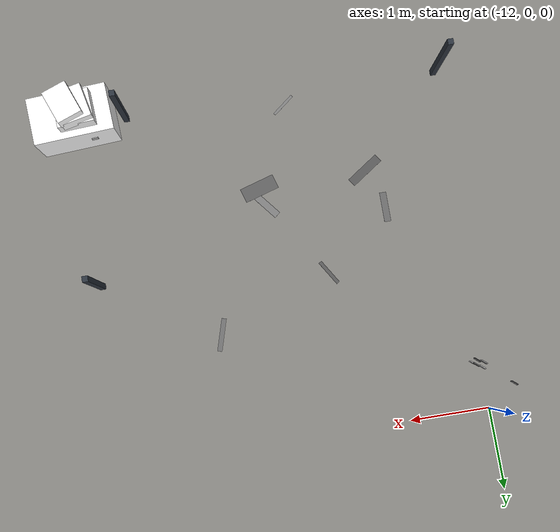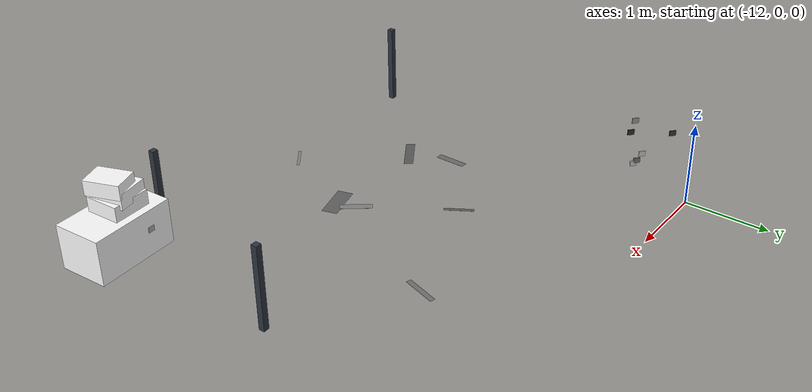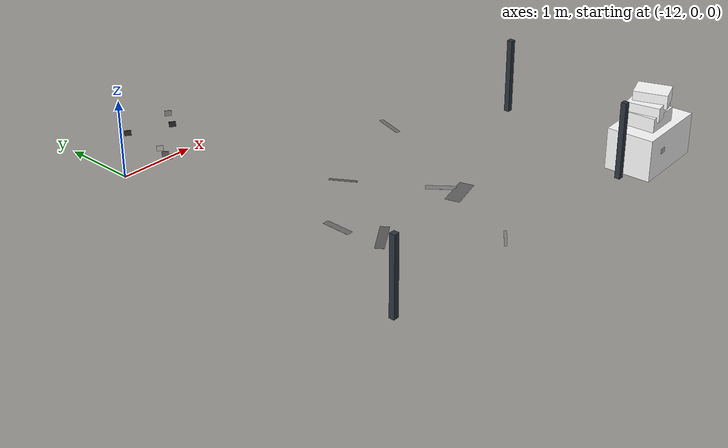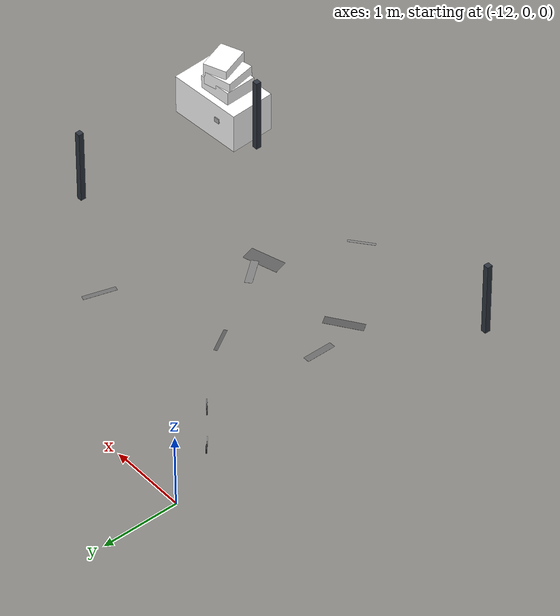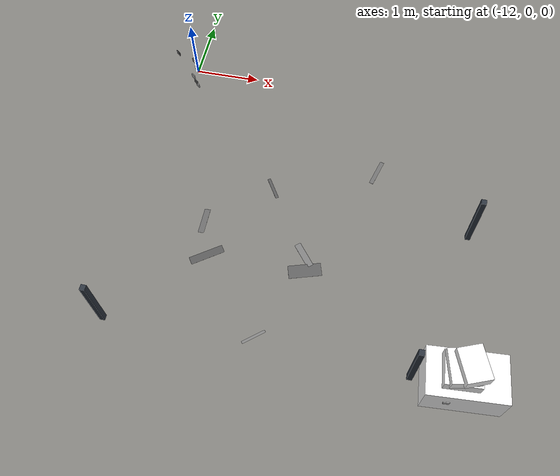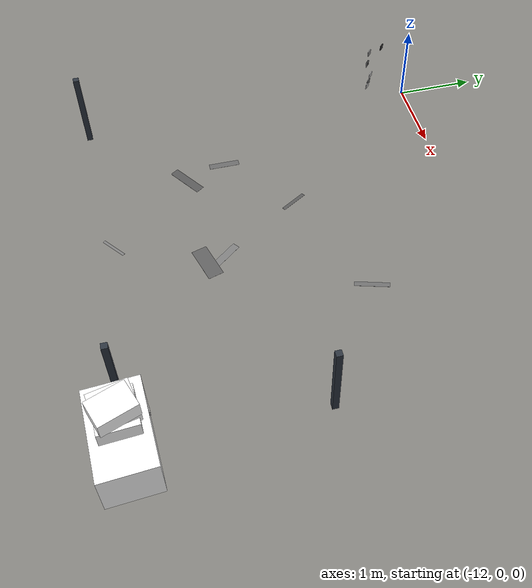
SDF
<sdf version="1.9">
 <world name="warehouse_irregular">
  <model name="concrete_patch_11">
   <static>true</static>
   <pose>-10.305460478600711 -2.00810798786973 0.0006 0 0 -1.0152370035446545</pose>
   <link name="body">
    <visual name="surface">
     <geometry><box><size>0.35070232564056275 0.04545488203444496 0.001</size></box></geometry>
     <material>
      <ambient>0.35538187843651625 0.35538187843651625 0.35538187843651625 1</ambient>
      <diffuse>0.35538187843651625 0.35538187843651625 0.35538187843651625 1</diffuse>
     </material>
    </visual>
   </link>
  </model>
  <model name="concrete_patch_37">
   <static>true</static>
   <pose>-10.988345253102091 -3.250426309690484 0.0006 0 0 0.6021258934732652</pose>
   <link name="body">
    <visual name="surface">
     <geometry><box><size>0.48443095328482694 0.11412339983069103 0.001</size></box></geometry>
     <material>
      <ambient>0.35009891575523466 0.35009891575523466 0.35009891575523466 1</ambient>
      <diffuse>0.35009891575523466 0.35009891575523466 0.35009891575523466 1</diffuse>
     </material>
    </visual>
   </link>
  </model>
  <model name="concrete_patch_86">
   <static>true</static>
   <pose>-10.081604210871713 -4.280085624954362 0.0006 0 0 -2.4675796717062104</pose>
   <link name="body">
    <visual name="surface">
     <geometry><box><size>0.3376888404473126 0.03512148428346302 0.001</size></box></geometry>
     <material>
      <ambient>0.5071253480310649 0.5071253480310649 0.5071253480310649 1</ambient>
      <diffuse>0.5071253480310649 0.5071253480310649 0.5071253480310649 1</diffuse>
     </material>
    </visual>
   </link>
  </model>
  <model name="concrete_patch_89">
   <static>true</static>
   <pose>-8.828801202796608 -1.4402536802628987 0.0006 0 0 1.286300547465829</pose>
   <link name="body">
    <visual name="surface">
     <geometry><box><size>0.41761964621453185 0.061284856943220764 0.001</size></box></geometry>
     <material>
      <ambient>0.43875244899850385 0.43875244899850385 0.43875244899850385 1</ambient>
      <diffuse>0.43875244899850385 0.43875244899850385 0.43875244899850385 1</diffuse>
     </material>
    </visual>
   </link>
  </model>
  <model name="concrete_patch_160">
   <static>true</static>
   <pose>-9.597912495771748 -3.2300083491824267 0.0006 0 0 -2.8497523256916675</pose>
   <link name="body">
    <visual name="surface">
     <geometry><box><size>0.45864334870514545 0.1893663792004226 0.001</size></box></geometry>
     <material>
      <ambient>0.3783962432983252 0.3783962432983252 0.3783962432983252 1</ambient>
      <diffuse>0.3783962432983252 0.3783962432983252 0.3783962432983252 1</diffuse>
     </material>
    </visual>
   </link>
  </model>
  <model name="concrete_patch_164">
   <static>true</static>
   <pose>-9.655020967795593 -2.9963084652793093 0.0006 0 0 -0.893942751986911</pose>
   <link name="body">
    <visual name="surface">
     <geometry><box><size>0.3802402398787042 0.09234643678714612 0.001</size></box></geometry>
     <material>
      <ambient>0.5023015897807874 0.5023015897807874 0.5023015897807874 1</ambient>
      <diffuse>0.5023015897807874 0.5023015897807874 0.5023015897807874 1</diffuse>
     </material>
    </visual>
   </link>
  </model>
  <model name="concrete_patch_213">
   <static>true</static>
   <pose>-11.163991027614557 -2.7335674273852124 0.0006 0 0 1.5726283698348649</pose>
   <link name="body">
    <visual name="surface">
     <geometry><box><size>0.3858939621898104 0.08541892742557092 0.001</size></box></geometry>
     <material>
      <ambient>0.42063629939870406 0.42063629939870406 0.42063629939870406 1</ambient>
      <diffuse>0.42063629939870406 0.42063629939870406 0.42063629939870406 1</diffuse>
     </material>
    </visual>
   </link>
  </model>
  <model name="panel_20_0_-1">
   <static>true</static>
   <pose>-12.141479451242294 -0.31856807250321695 0.7467822247445873 0 0 -0.6949268432299933</pose>
   <link name="body">
    <visual name="surface">
     <geometry><box><size>0.08 0.012 0.065</size></box></geometry>
     <material>
      <ambient>0.18362276153051632 0.18362276153051632 0.18362276153051632 1</ambient>
      <diffuse>0.18362276153051632 0.18362276153051632 0.18362276153051632 1</diffuse>
     </material>
    </visual>
   </link>
  </model>
  <model name="panel_20_1_-1">
   <static>true</static>
   <pose>-11.794897467508882 -0.6074971483010492 0.4090383457211423 0 0 -0.6949268432299933</pose>
   <link name="body">
    <visual name="surface">
     <geometry><box><size>0.08 0.012 0.065</size></box></geometry>
     <material>
      <ambient>0.6856479926128612 0.6856479926128612 0.6856479926128612 1</ambient>
      <diffuse>0.6856479926128612 0.6856479926128612 0.6856479926128612 1</diffuse>
     </material>
    </visual>
   </link>
  </model>
  <model name="panel_20_2_-1">
   <static>true</static>
   <pose>-11.869855404556471 -0.5450082467096422 0.5254771433696706 0 0 -0.6949268432299933</pose>
   <link name="body">
    <visual name="surface">
     <geometry><box><size>0.08 0.012 0.065</size></box></geometry>
     <material>
      <ambient>0.7089370998226653 0.7089370998226653 0.7089370998226653 1</ambient>
      <diffuse>0.7089370998226653 0.7089370998226653 0.7089370998226653 1</diffuse>
     </material>
    </visual>
   </link>
  </model>
  <model name="panel_20_3_-1">
   <static>true</static>
   <pose>-11.825745722257434 -0.5817804112725868 0.4448447473720447 0 0 -0.6949268432299933</pose>
   <link name="body">
    <visual name="surface">
     <geometry><box><size>0.08 0.012 0.065</size></box></geometry>
     <material>
      <ambient>0.39630981124364684 0.39630981124364684 0.39630981124364684 1</ambient>
      <diffuse>0.39630981124364684 0.39630981124364684 0.39630981124364684 1</diffuse>
     </material>
    </visual>
   </link>
  </model>
  <model name="panel_20_4_-1">
   <static>true</static>
   <pose>-11.773960074173074 -0.6249516669721176 0.970644005284138 0 0 -0.6949268432299933</pose>
   <link name="body">
    <visual name="surface">
     <geometry><box><size>0.08 0.012 0.065</size></box></geometry>
     <material>
      <ambient>0.5404755554805029 0.5404755554805029 0.5404755554805029 1</ambient>
      <diffuse>0.5404755554805029 0.5404755554805029 0.5404755554805029 1</diffuse>
     </material>
    </visual>
   </link>
  </model>
  <model name="panel_20_6_-1">
   <static>true</static>
   <pose>-11.742984405772502 -0.6507746227610769 0.8257033414376074 0 0 -0.6949268432299933</pose>
   <link name="body">
    <visual name="surface">
     <geometry><box><size>0.08 0.012 0.065</size></box></geometry>
     <material>
      <ambient>0.15818186207418097 0.15818186207418097 0.15818186207418097 1</ambient>
      <diffuse>0.15818186207418097 0.15818186207418097 0.15818186207418097 1</diffuse>
     </material>
    </visual>
   </link>
  </model>
  <model name="post_21_-1">
   <static>true</static>
   <pose>-7.4263383436621195 -2.284867329142573 0.5 0 0 0</pose>
   <link name="body">
    <visual name="surface">
     <geometry><box><size>0.07 0.07 1</size></box></geometry>
     <material><ambient>0.18 0.21 0.25 1</ambient><diffuse>0.18 0.21 0.25 1</diffuse></material>
    </visual>
    <collision name="solid"><geometry><box><size>0.07 0.07 1</size></box></geometry></collision>
   </link>
  </model>
  <model name="post_22_1">
   <static>true</static>
   <pose>-12.093533003662998 -4.399151251139386 0.5 0 0 0</pose>
   <link name="body">
    <visual name="surface">
     <geometry><box><size>0.07 0.07 1</size></box></geometry>
     <material><ambient>0.18 0.21 0.25 1</ambient><diffuse>0.18 0.21 0.25 1</diffuse></material>
    </visual>
    <collision name="solid"><geometry><box><size>0.07 0.07 1</size></box></geometry></collision>
   </link>
  </model>
  <model name="cabinet_23">
   <static>true</static>
   <pose>-7.413562252673449 -4.4167591657027785 0.2702189699564094 0 0 0.06392748084731525</pose>
   <link name="body">
    <visual name="surface">
     <geometry><box><size>1 0.6 0.5404379399128189</size></box></geometry>
     <material>
      <ambient>1 1 1 1</ambient>
      <diffuse>1 1 1 1</diffuse>
      <pbr>
       <metal>
        <albedo_map>model://feature_warehouse_materials/textures/storage_23.png</albedo_map>
        <roughness>.9</roughness>
        <metalness>0</metalness>
       </metal>
      </pbr>
     </material>
    </visual>
    <collision name="solid"><geometry><box><size>1 0.6 0.5404379399128189</size></box></geometry></collision>
   </link>
  </model>
  <model name="panel_23_0_-1">
   <static>true</static>
   <pose>-7.608530614682942 -4.73486429670327 0.3144433735326102 0 0 0.06392748084731525</pose>
   <link name="body">
    <visual name="surface">
     <geometry><box><size>0.08 0.012 0.065</size></box></geometry>
     <material>
      <ambient>0.7084142000105711 0.7084142000105711 0.7084142000105711 1</ambient>
      <diffuse>0.7084142000105711 0.7084142000105711 0.7084142000105711 1</diffuse>
     </material>
    </visual>
   </link>
  </model>
  <model name="panel_23_0_1">
   <static>true</static>
   <pose>-7.647499822614052 -4.126110322725915 0.3144433735326102 0 0 0.06392748084731525</pose>
   <link name="body">
    <visual name="surface">
     <geometry><box><size>0.08 0.012 0.065</size></box></geometry>
     <material>
      <ambient>0.682684284060524 0.682684284060524 0.682684284060524 1</ambient>
      <diffuse>0.682684284060524 0.682684284060524 0.682684284060524 1</diffuse>
     </material>
    </visual>
   </link>
  </model>
  <model name="carton_23_0">
   <static>true</static>
   <pose>-7.498184293090966 -4.4167591657027785 0.6404379399128188 0 0 0.06392748084731525</pose>
   <link name="body">
    <visual name="surface">
     <geometry><box><size>0.45 0.42 0.18</size></box></geometry>
     <material>
      <ambient>1 1 1 1</ambient>
      <diffuse>1 1 1 1</diffuse>
      <pbr>
       <metal>
        <albedo_map>model://feature_warehouse_materials/textures/storage_23.png</albedo_map>
        <roughness>.9</roughness>
        <metalness>0</metalness>
       </metal>
      </pbr>
     </material>
    </visual>
    <collision name="solid"><geometry><box><size>0.45 0.42 0.18</size></box></geometry></collision>
   </link>
  </model>
  <model name="carton_23_1">
   <static>true</static>
   <pose>-7.504120088874111 -4.4167591657027785 0.7604379399128188 0 0 0.21392748084731525</pose>
   <link name="body">
    <visual name="surface">
     <geometry><box><size>0.38 0.42 0.18</size></box></geometry>
     <material>
      <ambient>1 1 1 1</ambient>
      <diffuse>1 1 1 1</diffuse>
      <pbr>
       <metal>
        <albedo_map>model://feature_warehouse_materials/textures/storage_23.png</albedo_map>
        <roughness>.9</roughness>
        <metalness>0</metalness>
       </metal>
      </pbr>
     </material>
    </visual>
    <collision name="solid"><geometry><box><size>0.38 0.42 0.18</size></box></geometry></collision>
   </link>
  </model>
  <model name="carton_23_2">
   <static>true</static>
   <pose>-7.426797427683226 -4.4167591657027785 0.8804379399128188 0 0 0.36392748084731524</pose>
   <link name="body">
    <visual name="surface">
     <geometry><box><size>0.31 0.42 0.18</size></box></geometry>
     <material>
      <ambient>1 1 1 1</ambient>
      <diffuse>1 1 1 1</diffuse>
      <pbr>
       <metal>
        <albedo_map>model://feature_warehouse_materials/textures/storage_23.png</albedo_map>
        <roughness>.9</roughness>
        <metalness>0</metalness>
       </metal>
      </pbr>
     </material>
    </visual>
    <collision name="solid"><geometry><box><size>0.31 0.42 0.18</size></box></geometry></collision>
   </link>
  </model>
  <model name="post_23_-1">
   <static>true</static>
   <pose>-8.033562252673448 -4.4167591657027785 0.5 0 0 0</pose>
   <link name="body">
    <visual name="surface">
     <geometry><box><size>0.07 0.07 1</size></box></geometry>
     <material><ambient>0.18 0.21 0.25 1</ambient><diffuse>0.18 0.21 0.25 1</diffuse></material>
    </visual>
    <collision name="solid"><geometry><box><size>0.07 0.07 1</size></box></geometry></collision>
   </link>
  </model>
 </world>
</sdf>
